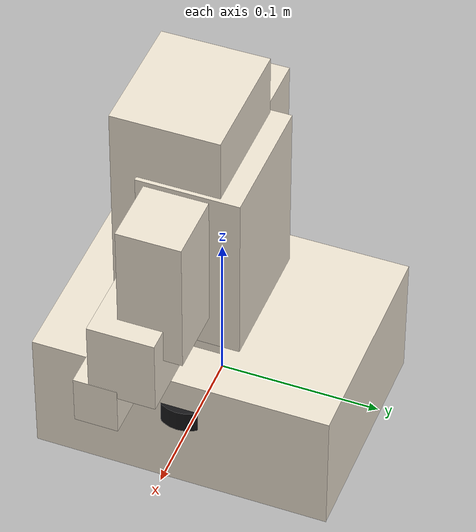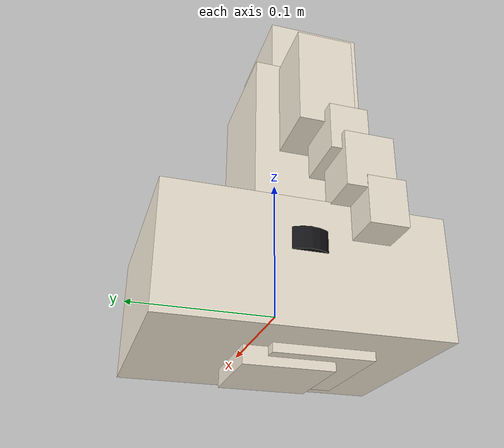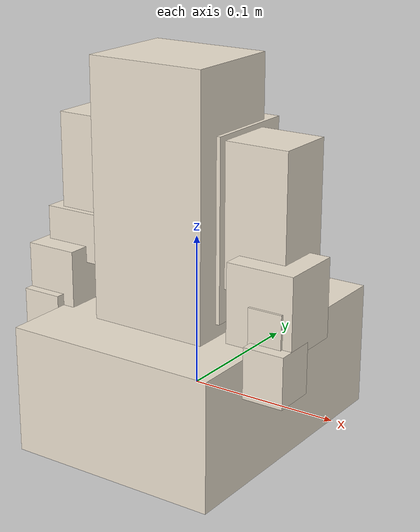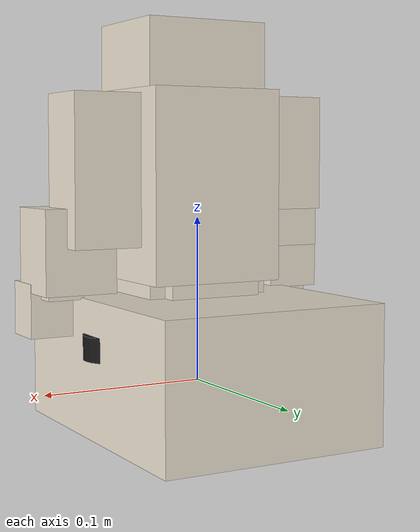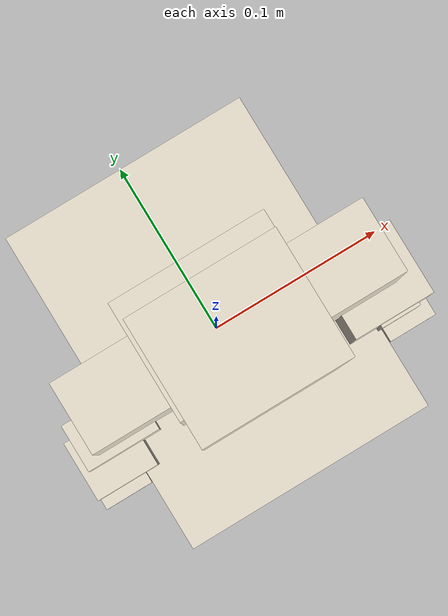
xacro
<?xml version="1.0"?>
<robot name="galahad" xmlns:xacro="http://www.ros.org/wiki/xacro">

  <xacro:property name="parked_height_mm" value="240"/>
  <xacro:property name="parked_width_mm" value="195"/>
  <xacro:property name="parked_depth_mm" value="186"/>
  <xacro:property name="track_separation_mm" value="110"/>
  <xacro:property name="sprocket_radius_mm" value="19.5"/>

  <xacro:include filename="galahad.urdf"/>

</robot>

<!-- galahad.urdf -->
<!-- Galahad companion robot - generated by tools/gen_urdf.py -->
<!-- Link frames and joint origins come from blender/galahad.blend (mm -> m).
     Masses and limits are engineering estimates, not measurements. -->
<robot name="galahad">
  <link name="base_link">
    <visual>
      <origin xyz="-0.0000 0.0000 0.0116" rpy="0 0 0"/>
      <geometry><box size="0.1409 0.1861 0.0832"/></geometry>
      <material name="ivory"><color rgba="0.93 0.89 0.82 1"/></material>
    </visual>
    <collision>
      <origin xyz="-0.0000 0.0000 0.0116" rpy="0 0 0"/>
      <geometry><box size="0.1409 0.1861 0.0832"/></geometry>
    </collision>
    <inertial>
      <origin xyz="-0.0000 0.0000 0.0116" rpy="0 0 0"/>
      <mass value="0.4600"/>
      <inertia ixx="0.001594" ixy="0" ixz="0" iyy="0.001026" iyz="0" izz="0.002089"/>
    </inertial>
  </link>
  <link name="waist_yaw">
    <visual>
      <origin xyz="0.0000 -0.0051 0.0110" rpy="0 0 0"/>
      <geometry><box size="0.0588 0.0571 0.0330"/></geometry>
      <material name="ivory"><color rgba="0.93 0.89 0.82 1"/></material>
    </visual>
    <collision>
      <origin xyz="0.0000 -0.0051 0.0110" rpy="0 0 0"/>
      <geometry><box size="0.0588 0.0571 0.0330"/></geometry>
    </collision>
    <inertial>
      <origin xyz="0.0000 -0.0051 0.0110" rpy="0 0 0"/>
      <mass value="0.0450"/>
      <inertia ixx="0.000016" ixy="0" ixz="0" iyy="0.000017" iyz="0" izz="0.000025"/>
    </inertial>
  </link>
  <link name="waist_pitch">
    <visual>
      <origin xyz="0.0000 0.0040 -0.0920" rpy="0 0 0"/>
      <geometry><box size="0.0600 0.0600 0.0400"/></geometry>
      <material name="ivory"><color rgba="0.93 0.89 0.82 1"/></material>
    </visual>
    <collision>
      <origin xyz="0.0000 0.0040 -0.0920" rpy="0 0 0"/>
      <geometry><box size="0.0600 0.0600 0.0400"/></geometry>
    </collision>
    <inertial>
      <origin xyz="0.0000 0.0040 -0.0920" rpy="0 0 0"/>
      <mass value="0.0350"/>
      <inertia ixx="0.000015" ixy="0" ixz="0" iyy="0.000015" iyz="0" izz="0.000021"/>
    </inertial>
  </link>
  <link name="torso">
    <visual>
      <origin xyz="0.0001 -0.0011 0.0296" rpy="0 0 0"/>
      <geometry><box size="0.0835 0.0638 0.1152"/></geometry>
      <material name="ivory"><color rgba="0.93 0.89 0.82 1"/></material>
    </visual>
    <collision>
      <origin xyz="0.0001 -0.0011 0.0296" rpy="0 0 0"/>
      <geometry><box size="0.0835 0.0638 0.1152"/></geometry>
    </collision>
    <inertial>
      <origin xyz="0.0001 -0.0011 0.0296" rpy="0 0 0"/>
      <mass value="0.3000"/>
      <inertia ixx="0.000433" ixy="0" ixz="0" iyy="0.000506" iyz="0" izz="0.000276"/>
    </inertial>
  </link>
  <link name="head_pan">
    <visual>
      <origin xyz="0.0000 0.0020 -0.1860" rpy="0 0 0"/>
      <geometry><box size="0.0600 0.0600 0.0400"/></geometry>
      <material name="ivory"><color rgba="0.93 0.89 0.82 1"/></material>
    </visual>
    <collision>
      <origin xyz="0.0000 0.0020 -0.1860" rpy="0 0 0"/>
      <geometry><box size="0.0600 0.0600 0.0400"/></geometry>
    </collision>
    <inertial>
      <origin xyz="0.0000 0.0020 -0.1860" rpy="0 0 0"/>
      <mass value="0.0200"/>
      <inertia ixx="0.000009" ixy="0" ixz="0" iyy="0.000009" iyz="0" izz="0.000012"/>
    </inertial>
  </link>
  <link name="head_tilt">
    <visual>
      <origin xyz="-0.0000 -0.0175 -0.0870" rpy="0 0 0"/>
      <geometry><box size="0.0785 0.0670 0.2540"/></geometry>
      <material name="ivory"><color rgba="0.93 0.89 0.82 1"/></material>
    </visual>
    <collision>
      <origin xyz="-0.0000 -0.0175 -0.0870" rpy="0 0 0"/>
      <geometry><box size="0.0785 0.0670 0.2540"/></geometry>
    </collision>
    <inertial>
      <origin xyz="-0.0000 -0.0175 -0.0870" rpy="0 0 0"/>
      <mass value="0.0850"/>
      <inertia ixx="0.000489" ixy="0" ixz="0" iyy="0.000501" iyz="0" izz="0.000075"/>
    </inertial>
  </link>
  <link name="shoulder_yaw_L">
    <visual>
      <origin xyz="0.0260 0.0040 -0.1680" rpy="0 0 0"/>
      <geometry><box size="0.0600 0.0600 0.0400"/></geometry>
      <material name="ivory"><color rgba="0.93 0.89 0.82 1"/></material>
    </visual>
    <collision>
      <origin xyz="0.0260 0.0040 -0.1680" rpy="0 0 0"/>
      <geometry><box size="0.0600 0.0600 0.0400"/></geometry>
    </collision>
    <inertial>
      <origin xyz="0.0260 0.0040 -0.1680" rpy="0 0 0"/>
      <mass value="0.0400"/>
      <inertia ixx="0.000017" ixy="0" ixz="0" iyy="0.000017" iyz="0" izz="0.000024"/>
    </inertial>
  </link>
  <link name="shoulder_pitch_L">
    <visual>
      <origin xyz="0.0029 -0.0056 -0.0069" rpy="0 0 0"/>
      <geometry><box size="0.0690 0.0384 0.0701"/></geometry>
      <material name="ivory"><color rgba="0.93 0.89 0.82 1"/></material>
    </visual>
    <collision>
      <origin xyz="0.0029 -0.0056 -0.0069" rpy="0 0 0"/>
      <geometry><box size="0.0690 0.0384 0.0701"/></geometry>
    </collision>
    <inertial>
      <origin xyz="0.0029 -0.0056 -0.0069" rpy="0 0 0"/>
      <mass value="0.0550"/>
      <inertia ixx="0.000029" ixy="0" ixz="0" iyy="0.000044" iyz="0" izz="0.000029"/>
    </inertial>
  </link>
  <link name="elbow_L">
    <visual>
      <origin xyz="-0.0024 -0.0141 -0.0041" rpy="0 0 0"/>
      <geometry><box size="0.0401 0.0259 0.0326"/></geometry>
      <material name="ivory"><color rgba="0.93 0.89 0.82 1"/></material>
    </visual>
    <collision>
      <origin xyz="-0.0024 -0.0141 -0.0041" rpy="0 0 0"/>
      <geometry><box size="0.0401 0.0259 0.0326"/></geometry>
    </collision>
    <inertial>
      <origin xyz="-0.0024 -0.0141 -0.0041" rpy="0 0 0"/>
      <mass value="0.0450"/>
      <inertia ixx="0.000006" ixy="0" ixz="0" iyy="0.000010" iyz="0" izz="0.000009"/>
    </inertial>
  </link>
  <link name="wrist_L">
    <visual>
      <origin xyz="0.0002 -0.0227 -0.0029" rpy="0 0 0"/>
      <geometry><box size="0.0346 0.0330 0.0381"/></geometry>
      <material name="ivory"><color rgba="0.93 0.89 0.82 1"/></material>
    </visual>
    <collision>
      <origin xyz="0.0002 -0.0227 -0.0029" rpy="0 0 0"/>
      <geometry><box size="0.0346 0.0330 0.0381"/></geometry>
    </collision>
    <inertial>
      <origin xyz="0.0002 -0.0227 -0.0029" rpy="0 0 0"/>
      <mass value="0.0300"/>
      <inertia ixx="0.000006" ixy="0" ixz="0" iyy="0.000007" iyz="0" izz="0.000006"/>
    </inertial>
  </link>
  <link name="gripper_L">
    <visual>
      <origin xyz="-0.0009 -0.0283 -0.0094" rpy="0 0 0"/>
      <geometry><box size="0.0268 0.0256 0.0321"/></geometry>
      <material name="ivory"><color rgba="0.93 0.89 0.82 1"/></material>
    </visual>
    <collision>
      <origin xyz="-0.0009 -0.0283 -0.0094" rpy="0 0 0"/>
      <geometry><box size="0.0268 0.0256 0.0321"/></geometry>
    </collision>
    <inertial>
      <origin xyz="-0.0009 -0.0283 -0.0094" rpy="0 0 0"/>
      <mass value="0.0350"/>
      <inertia ixx="0.000005" ixy="0" ixz="0" iyy="0.000005" iyz="0" izz="0.000004"/>
    </inertial>
  </link>
  <link name="shoulder_yaw_R">
    <visual>
      <origin xyz="-0.0260 0.0040 -0.1680" rpy="0 0 0"/>
      <geometry><box size="0.0600 0.0600 0.0400"/></geometry>
      <material name="ivory"><color rgba="0.93 0.89 0.82 1"/></material>
    </visual>
    <collision>
      <origin xyz="-0.0260 0.0040 -0.1680" rpy="0 0 0"/>
      <geometry><box size="0.0600 0.0600 0.0400"/></geometry>
    </collision>
    <inertial>
      <origin xyz="-0.0260 0.0040 -0.1680" rpy="0 0 0"/>
      <mass value="0.0400"/>
      <inertia ixx="0.000017" ixy="0" ixz="0" iyy="0.000017" iyz="0" izz="0.000024"/>
    </inertial>
  </link>
  <link name="shoulder_pitch_R">
    <visual>
      <origin xyz="-0.0028 -0.0079 -0.0173" rpy="0 0 0"/>
      <geometry><box size="0.0690 0.0398 0.0906"/></geometry>
      <material name="ivory"><color rgba="0.93 0.89 0.82 1"/></material>
    </visual>
    <collision>
      <origin xyz="-0.0028 -0.0079 -0.0173" rpy="0 0 0"/>
      <geometry><box size="0.0690 0.0398 0.0906"/></geometry>
    </collision>
    <inertial>
      <origin xyz="-0.0028 -0.0079 -0.0173" rpy="0 0 0"/>
      <mass value="0.0550"/>
      <inertia ixx="0.000045" ixy="0" ixz="0" iyy="0.000059" iyz="0" izz="0.000029"/>
    </inertial>
  </link>
  <link name="elbow_R">
    <visual>
      <origin xyz="0.0047 -0.0187 -0.0188" rpy="0 0 0"/>
      <geometry><box size="0.0447 0.0418 0.0507"/></geometry>
      <material name="ivory"><color rgba="0.93 0.89 0.82 1"/></material>
    </visual>
    <collision>
      <origin xyz="0.0047 -0.0187 -0.0188" rpy="0 0 0"/>
      <geometry><box size="0.0447 0.0418 0.0507"/></geometry>
    </collision>
    <inertial>
      <origin xyz="0.0047 -0.0187 -0.0188" rpy="0 0 0"/>
      <mass value="0.0450"/>
      <inertia ixx="0.000016" ixy="0" ixz="0" iyy="0.000017" iyz="0" izz="0.000014"/>
    </inertial>
  </link>
  <link name="wrist_R">
    <visual>
      <origin xyz="-0.0003 -0.0234 -0.0067" rpy="0 0 0"/>
      <geometry><box size="0.0225 0.0318 0.0308"/></geometry>
      <material name="ivory"><color rgba="0.93 0.89 0.82 1"/></material>
    </visual>
    <collision>
      <origin xyz="-0.0003 -0.0234 -0.0067" rpy="0 0 0"/>
      <geometry><box size="0.0225 0.0318 0.0308"/></geometry>
    </collision>
    <inertial>
      <origin xyz="-0.0003 -0.0234 -0.0067" rpy="0 0 0"/>
      <mass value="0.0300"/>
      <inertia ixx="0.000005" ixy="0" ixz="0" iyy="0.000004" iyz="0" izz="0.000004"/>
    </inertial>
  </link>
  <link name="gripper_R">
    <visual>
      <origin xyz="0.0009 -0.0294 -0.0092" rpy="0 0 0"/>
      <geometry><box size="0.0269 0.0275 0.0327"/></geometry>
      <material name="ivory"><color rgba="0.93 0.89 0.82 1"/></material>
    </visual>
    <collision>
      <origin xyz="0.0009 -0.0294 -0.0092" rpy="0 0 0"/>
      <geometry><box size="0.0269 0.0275 0.0327"/></geometry>
    </collision>
    <inertial>
      <origin xyz="0.0009 -0.0294 -0.0092" rpy="0 0 0"/>
      <mass value="0.0350"/>
      <inertia ixx="0.000005" ixy="0" ixz="0" iyy="0.000005" iyz="0" izz="0.000004"/>
    </inertial>
  </link>
  <joint name="waist_yaw_joint" type="revolute">
    <parent link="base_link"/>
    <child link="waist_yaw"/>
    <origin xyz="0.0000 0.0000 0.0580" rpy="0 0 0"/>
    <axis xyz="0 0 1"/>
    <limit lower="-1.5708" upper="1.5708" effort="0.93" velocity="0.3491"/>
  </joint>
  <joint name="waist_pitch_joint" type="revolute">
    <parent link="waist_yaw"/>
    <child link="waist_pitch"/>
    <origin xyz="0.0000 -0.0040 0.0120" rpy="0 0 0"/>
    <axis xyz="1 0 0"/>
    <limit lower="-0.3491" upper="0.3491" effort="0.93" velocity="0.2618"/>
  </joint>
  <joint name="torso_joint" type="fixed">
    <parent link="waist_pitch"/>
    <child link="torso"/>
    <origin xyz="0.0000 0.0000 0.0200" rpy="0 0 0"/>
  </joint>
  <joint name="head_pan_joint" type="revolute">
    <parent link="torso"/>
    <child link="head_pan"/>
    <origin xyz="0.0000 0.0020 0.0740" rpy="0 0 0"/>
    <axis xyz="0 0 1"/>
    <limit lower="-1.3963" upper="1.3963" effort="0.93" velocity="1.0472"/>
  </joint>
  <joint name="head_tilt_joint" type="revolute">
    <parent link="head_pan"/>
    <child link="head_tilt"/>
    <origin xyz="0.0000 0.0000 0.0140" rpy="0 0 0"/>
    <axis xyz="1 0 0"/>
    <limit lower="-0.4363" upper="0.6109" effort="0.93" velocity="1.0472"/>
  </joint>
  <joint name="shoulder_yaw_L_joint" type="revolute">
    <parent link="torso"/>
    <child link="shoulder_yaw_L"/>
    <origin xyz="-0.0260 0.0000 0.0560" rpy="0 0 0"/>
    <axis xyz="0 0 1"/>
    <limit lower="-1.3963" upper="1.3963" effort="0.93" velocity="0.6981"/>
  </joint>
  <joint name="shoulder_pitch_L_joint" type="revolute">
    <parent link="shoulder_yaw_L"/>
    <child link="shoulder_pitch_L"/>
    <origin xyz="-0.0260 0.0000 0.0000" rpy="0 0 0"/>
    <axis xyz="0 1 0"/>
    <limit lower="-1.7453" upper="1.6581" effort="0.93" velocity="0.6981"/>
  </joint>
  <joint name="elbow_L_joint" type="revolute">
    <parent link="shoulder_pitch_L"/>
    <child link="elbow_L"/>
    <origin xyz="-0.0180 -0.0020 -0.0460" rpy="0 0 0"/>
    <axis xyz="0 1 0"/>
    <limit lower="-2.0944" upper="1.5708" effort="0.93" velocity="0.6981"/>
  </joint>
  <joint name="wrist_L_joint" type="revolute">
    <parent link="elbow_L"/>
    <child link="wrist_L"/>
    <origin xyz="-0.0100 -0.0020 -0.0260" rpy="0 0 0"/>
    <axis xyz="0 1 0"/>
    <limit lower="-1.5708" upper="1.5708" effort="0.93" velocity="1.0472"/>
  </joint>
  <joint name="gripper_L_joint" type="revolute">
    <parent link="wrist_L"/>
    <child link="gripper_L"/>
    <origin xyz="-0.0030 -0.0040 -0.0200" rpy="0 0 0"/>
    <axis xyz="0 1 0"/>
    <limit lower="0.0000" upper="0.9599" effort="0.93" velocity="0.6981"/>
  </joint>
  <joint name="shoulder_yaw_R_joint" type="revolute">
    <parent link="torso"/>
    <child link="shoulder_yaw_R"/>
    <origin xyz="0.0260 0.0000 0.0560" rpy="0 0 0"/>
    <axis xyz="0 0 1"/>
    <limit lower="-1.3963" upper="1.3963" effort="0.93" velocity="0.6981"/>
  </joint>
  <joint name="shoulder_pitch_R_joint" type="revolute">
    <parent link="shoulder_yaw_R"/>
    <child link="shoulder_pitch_R"/>
    <origin xyz="0.0260 0.0000 0.0000" rpy="0 0 0"/>
    <axis xyz="0 1 0"/>
    <limit lower="-1.7453" upper="1.6581" effort="0.93" velocity="0.6981"/>
  </joint>
  <joint name="elbow_R_joint" type="revolute">
    <parent link="shoulder_pitch_R"/>
    <child link="elbow_R"/>
    <origin xyz="0.0180 -0.0020 -0.0460" rpy="0 0 0"/>
    <axis xyz="0 1 0"/>
    <limit lower="-2.0944" upper="1.5708" effort="0.93" velocity="0.6981"/>
  </joint>
  <joint name="wrist_R_joint" type="revolute">
    <parent link="elbow_R"/>
    <child link="wrist_R"/>
    <origin xyz="0.0100 -0.0020 -0.0260" rpy="0 0 0"/>
    <axis xyz="0 1 0"/>
    <limit lower="-1.5708" upper="1.5708" effort="0.93" velocity="1.0472"/>
  </joint>
  <joint name="gripper_R_joint" type="revolute">
    <parent link="wrist_R"/>
    <child link="gripper_R"/>
    <origin xyz="0.0030 -0.0040 -0.0200" rpy="0 0 0"/>
    <axis xyz="0 1 0"/>
    <limit lower="0.0000" upper="0.9599" effort="0.93" velocity="0.6981"/>
  </joint>
  <joint name="tread_L_joint" type="continuous">
    <parent link="base_link"/>
    <child link="tread_L"/>
    <origin xyz="-0.055 0 0.025" rpy="0 0 0"/>
    <axis xyz="0 1 0"/>
    <limit effort="0.16" velocity="34.6"/>
  </joint>
  <link name="tread_L">
    <visual><geometry><cylinder radius="0.0195" length="0.0146"/></geometry><material name="rubber"><color rgba="0.08 0.08 0.09 1"/></material></visual>
    <collision><geometry><cylinder radius="0.0195" length="0.0146"/></geometry></collision>
    <inertial><mass value="0.02"/><inertia ixx="0.0000019" ixy="0" ixz="0" iyy="0.0000019" iyz="0" izz="0.0000019"/></inertial>
  </link>
  <joint name="tread_R_joint" type="continuous">
    <parent link="base_link"/>
    <child link="tread_R"/>
    <origin xyz="0.055 0 0.025" rpy="0 0 0"/>
    <axis xyz="0 1 0"/>
    <limit effort="0.16" velocity="34.6"/>
  </joint>
  <link name="tread_R">
    <visual><geometry><cylinder radius="0.0195" length="0.0146"/></geometry><material name="rubber"><color rgba="0.08 0.08 0.09 1"/></material></visual>
    <collision><geometry><cylinder radius="0.0195" length="0.0146"/></geometry></collision>
    <inertial><mass value="0.02"/><inertia ixx="0.0000019" ixy="0" ixz="0" iyy="0.0000019" iyz="0" izz="0.0000019"/></inertial>
  </link>
</robot>
